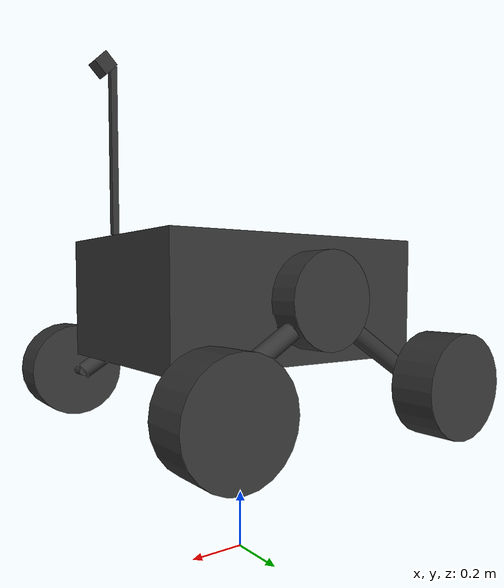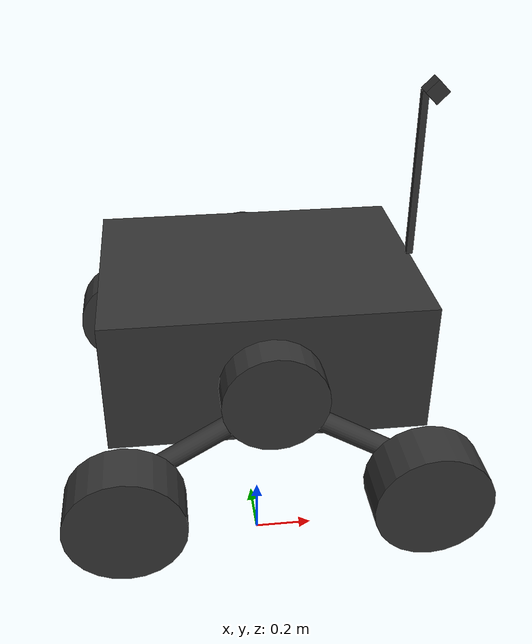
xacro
<?xml version="1.0"?>
<!--
     The model for the 2018 rover
-->
<robot name="rover_2018" xmlns:xacro="http://www.ros.org/wiki/xacro">

    <!-- CALCULATIONS
         This section holds all the math to calculate the offset (both linear
         and angular) for various components.
    -->
    <xacro:include filename="$(find sb_gazebo)/robots/macros.xacro"/>
    <xacro:include filename="$(find sb_gazebo)/robots/materials.xacro"/>
    <xacro:include filename="$(find sb_gazebo)/robots/rover_2018.gazebo"/>

    <xacro:property name="chassis_x_size" value="0.7"/>
    <xacro:property name="chassis_y_size" value="0.94"/>
    <xacro:property name="chassis_z_size" value="0.4"/>
    <xacro:property name="chassis_mass" value="10"/>
    <xacro:property name="chassis_elevation" value="0.5"/>
    <xacro:property name="chassis_x_pos" value="0"/>
    <xacro:property name="chassis_y_pos" value="0"/>
    <xacro:property name="chassis_z_pos" value="${chassis_z_size + chassis_elevation}"/>

    <xacro:property name="primary_rocker_radius" value="0.15"/>
    <xacro:property name="primary_rocker_length" value="0.1"/>
    <!-- The size of the gap between the chassis and the primary rocker -->
    <xacro:property name="primary_rocker_chassis_clearance" value="0.02"/>
    <!-- Primary rocker offset from it's parent joint (the chassis) -->
    <xacro:property name="primary_rocker_x_offset" value="0"/>
    <xacro:property name="primary_rocker_y_offset" value="${chassis_x_size/2 + primary_rocker_length/2 + primary_rocker_chassis_clearance}"/>
    <xacro:property name="primary_rocker_z_offset" value="0"/>

    <xacro:property name="primary_rocker_arm_length" value="0.4"/>
    <xacro:property name="primary_rocker_arm_radius" value="0.03"/>
    <xacro:property name="primary_rocker_arm_pitch" value="${pi*2.7/4}"/>
    <xacro:property name="primary_rocker_arm_x_offset"
        value="${primary_rocker_radius - cos(primary_rocker_arm_pitch)*primary_rocker_arm_length/2}"
        />
    <xacro:property name="primary_rocker_arm_y_offset" value="0"/>
    <xacro:property name="primary_rocker_arm_z_offset"
        value="${- sin(primary_rocker_arm_pitch)*primary_rocker_arm_length/2}"/>

    <xacro:property name="primary_wheel_axle_length" value="0.1"/>
    <xacro:property name="primary_wheel_axle_radius" value="0.015"/>
    <xacro:property name="primary_wheel_axle_x_offset"
        value="${sin(primary_rocker_arm_pitch)*primary_rocker_arm_length/2}"/>
    <xacro:property name="primary_wheel_axle_y_offset" value="${primary_wheel_axle_length/2}"/>
    <xacro:property name="primary_wheel_axle_z_offset"
        value="${cos(primary_rocker_arm_pitch)*primary_rocker_arm_length/2}"/>

    <xacro:property name="primary_wheel_length" value="0.15"/>
    <xacro:property name="primary_wheel_radius" value="0.17"/>
    <xacro:property name="primary_wheel_x_offset" value="0"/>
    <xacro:property name="primary_wheel_y_offset" value="${primary_wheel_length/2}"/>
    <xacro:property name="primary_wheel_z_offset" value="0"/>

    <xacro:property name="tower_upright_x_offset" value="${chassis_y_size/2}"/>
    <xacro:property name="tower_upright_height" value="0.5"/>
    <xacro:property name="tower_upright_x_size" value="0.02"/>
    <xacro:property name="tower_upright_y_size" value="0.02"/>
    <xacro:property name="tower_upright_z_offset" value="${tower_upright_height/2 + chassis_z_size/2}"/>

    <xacro:property name="camera_size" value="0.05"/>
    <xacro:property name="camera_pitch" value="${pi/4}"/>
    <xacro:property name="camera_x_offset" value="0.03"/>
    <xacro:property name="camera_z_offset" value="${tower_upright_height/2}"/>

    <!-- JOINTS AND LINKS
         This section uses all the values calculated above to actually create
         all the links and joints of the robot
    -->

    <!-- Footprint of the robot (because gazebo's base_link can't have interia) -->
    <link name='base_link'/>
    <joint name="base_joint" type="fixed">
        <parent link="base_link"/>
        <child link="chassis"/>
        <origin xyz="
            ${chassis_x_pos}
            ${chassis_y_pos}
            ${chassis_z_pos}
            "
            rpy="0 0 0"
            />
    </joint>
    <box_link
        name="chassis"
        x_pos="0"
        y_pos="0"
        z_pos="0"
        x_size="${chassis_x_size}"
        y_size="${chassis_y_size}"
        z_size="${chassis_z_size}"
        roll="0"
        pitch="0"
        yaw="0"
        mass="10"
        material_name="grey"
        />

    <xacro:macro name="primary_rocker" params="left_right_prefix y_reflect">
        <!-- TODO: Make this revolute model with a spring to resist rotation (but allow it) instead of just being fixed like it currently is -->
        <joint name="${left_right_prefix}_primary_rocker_to_chassis" type="revolute">
            <parent link="chassis"/>
            <child link="${left_right_prefix}_primary_rocker"/>
            <origin xyz="
                ${primary_rocker_x_offset}
                ${primary_rocker_y_offset*y_reflect}
                ${primary_rocker_z_offset}
                "
                rpy="
                0
                0
                0
                "
                />
            <axis xyz="0 1 0" rpy="0 0 0" />
            <limit effort="100" velocity="100"/>
            <joint_properties damping="0.0" friction="0.0"/>
            <limit lower="-20" upper="20" effort="100" velocity="100"/>
        </joint>
        <cylinder_link
            name="${left_right_prefix}_primary_rocker"
            x_pos="0"
            y_pos="0"
            z_pos="0"
            radius="${primary_rocker_radius}"
            length="${primary_rocker_length}"
            roll="${pi/2}"
            pitch="${pi/2}"
            yaw="0"
            mass="1"
            material_name="grey"
            />
    </xacro:macro>
    <primary_rocker left_right_prefix="left" y_reflect="1"/>
    <primary_rocker left_right_prefix="right" y_reflect="-1"/>

    <xacro:macro name="primary_rocker_arm" params="left_right_prefix front_back_prefix x_reflect y_reflect">
        <joint name="${left_right_prefix}_${front_back_prefix}_primary_rocker_to_primary_rocker_arm" type="fixed">
            <parent link="${left_right_prefix}_primary_rocker"/>
            <child link="${left_right_prefix}_${front_back_prefix}_primary_rocker_arm"/>
            <origin xyz="
                ${primary_rocker_arm_x_offset*x_reflect}
                ${primary_rocker_arm_y_offset*y_reflect}
                ${primary_rocker_arm_z_offset}
                "
                rpy="0 0 0"
            />
        </joint>
        <cylinder_link
            name="${left_right_prefix}_${front_back_prefix}_primary_rocker_arm"
            x_pos="0"
            y_pos="0"
            z_pos="0"
            radius="${primary_rocker_arm_radius}"
            length="${primary_rocker_arm_length}"
            roll="0"
            pitch="${primary_rocker_arm_pitch*x_reflect}"
            yaw="0"
            mass="1"
            material_name="grey"
            />
    </xacro:macro>
    <primary_rocker_arm left_right_prefix="left" front_back_prefix="FRONT" x_reflect="1" y_reflect="1"/>
    <primary_rocker_arm left_right_prefix="right" front_back_prefix="FRONT" x_reflect="1" y_reflect="-1"/>
    <primary_rocker_arm left_right_prefix="left" front_back_prefix="BACK" x_reflect="-1" y_reflect="1"/>
    <primary_rocker_arm left_right_prefix="right" front_back_prefix="BACK" x_reflect="-1" y_reflect="-1"/>

    <xacro:macro name="primary_wheel_axle" params="left_right_prefix front_back_prefix x_reflect y_reflect">
        <joint name="${left_right_prefix}_${front_back_prefix}_primary_rocker_arm_to_primary_wheel_axle" type="fixed">
            <parent link="${left_right_prefix}_${front_back_prefix}_primary_rocker_arm"/>
            <child link="${left_right_prefix}_${front_back_prefix}_primary_wheel_axle"/>
            <origin xyz="
                ${primary_wheel_axle_x_offset*x_reflect}
                ${primary_wheel_axle_y_offset*y_reflect}
                ${primary_wheel_axle_z_offset}
                "
                rpy="0 0 0"
            />
        </joint>
        <cylinder_link
            name="${left_right_prefix}_${front_back_prefix}_primary_wheel_axle"
            x_pos="0"
            y_pos="0"
            z_pos="0"
            radius="${primary_wheel_axle_radius}"
            length="${primary_wheel_axle_length}"
            roll="${pi/2}"
            pitch="${pi/2}"
            yaw="0"
            mass="0.05"
            material_name="grey"
            />
    </xacro:macro>
    <primary_wheel_axle left_right_prefix="left" front_back_prefix="FRONT" x_reflect="1" y_reflect="1"/>
    <primary_wheel_axle left_right_prefix="right" front_back_prefix="FRONT" x_reflect="1" y_reflect="-1"/>
    <primary_wheel_axle left_right_prefix="left" front_back_prefix="BACK" x_reflect="-1" y_reflect="1"/>
    <primary_wheel_axle left_right_prefix="right" front_back_prefix="BACK" x_reflect="-1" y_reflect="-1"/>

    <xacro:macro name="primary_wheel" params="left_right_prefix front_back_prefix x_reflect y_reflect">
        <joint name="${left_right_prefix}_${front_back_prefix}_primary_wheel_axle_to_primary_wheel" type="continuous">
            <parent link="${left_right_prefix}_${front_back_prefix}_primary_wheel_axle"/>
            <child link="${left_right_prefix}_${front_back_prefix}_primary_wheel"/>
            <origin xyz="
                ${primary_wheel_x_offset*x_reflect}
                ${primary_wheel_y_offset*y_reflect}
                ${primary_wheel_z_offset}
                "
                rpy="0 0 0"
                />
            <axis xyz="0 1 0" rpy="0 0 0" />
            <limit effort="100" velocity="100"/>
            <joint_properties damping="0.0" friction="0.0"/>
            <hardwareInterface>EffortJointInterface</hardwareInterface>
        </joint>
        <cylinder_link
            name="${left_right_prefix}_${front_back_prefix}_primary_wheel"
            x_pos="0"
            y_pos="0"
            z_pos="0"
            radius="${primary_wheel_radius}"
            length="${primary_wheel_length}"
            roll="${pi/2}"
            pitch="${pi/2}"
            yaw="0"
            mass="1"
            material_name="grey"
            />
    </xacro:macro>
    <primary_wheel left_right_prefix="left" front_back_prefix="FRONT" x_reflect="1" y_reflect="1"/>
    <primary_wheel left_right_prefix="right" front_back_prefix="FRONT" x_reflect="1" y_reflect="-1"/>
    <primary_wheel left_right_prefix="left" front_back_prefix="BACK" x_reflect="-1" y_reflect="1"/>
    <primary_wheel left_right_prefix="right" front_back_prefix="BACK" x_reflect="-1" y_reflect="-1"/>

    <joint name="chassis_to_tower" type="fixed">
        <parent link="chassis"/>
        <child link="tower_upright"/>
        <origin xyz="
            ${tower_upright_x_offset}
            0
            ${tower_upright_z_offset}
            "
            rpy="0 0 0"
            />
    </joint>
    <box_link
        name="tower_upright"
        x_pos="0"
        y_pos="0"
        z_pos="0"
        x_size="${tower_upright_x_size}"
        y_size="${tower_upright_y_size}"
        z_size="${tower_upright_height}"
        roll="0"
        pitch="0"
        yaw="0"
        mass="10"
        material_name="grey"
        />

    <joint name="tower_upright_to_camera" type="fixed">
        <parent link="tower_upright"/>
        <child link="camera"/>
        <origin xyz="
            ${camera_x_offset}
            0
            ${camera_z_offset}
            "
            rpy="0 ${camera_pitch} 0"
            />
    </joint>
    <box_link
        name="camera"
        x_pos="0"
        y_pos="0"
        z_pos="0"
        x_size="${camera_size}"
        y_size="${camera_size}"
        z_size="${camera_size}"
        roll="0"
        pitch="0"
        yaw="0"
        mass="10"
        material_name="grey"
        />

    <gazebo>
      <plugin name="skid_steer_drive_controller" filename="libgazebo_ros_skid_steer_drive.so">
        <updateRate>100.0</updateRate>
        <robotNamespace>/</robotNamespace>
        <leftFrontJoint>left_FRONT_primary_wheel_axle_to_primary_wheel</leftFrontJoint>
        <rightFrontJoint>right_FRONT_primary_wheel_axle_to_primary_wheel</rightFrontJoint>
        <leftRearJoint>left_BACK_primary_wheel_axle_to_primary_wheel</leftRearJoint>
        <rightRearJoint>right_BACK_primary_wheel_axle_to_primary_wheel</rightRearJoint>
        <wheelSeparation>0.4</wheelSeparation>
        <wheelDiameter>0.215</wheelDiameter>
        <robotBaseFrame>base_link</robotBaseFrame>
        <torque>20</torque>
        <commandTopic>cmd_vel</commandTopic>
        <broadcastTF>false</broadcastTF>
      </plugin>
    </gazebo>
</robot>

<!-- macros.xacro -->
<!--
    A Useful set of macros, mostly for generating model parts
-->
<robot name="robot" xmlns:xacro="http://www.ros.org/wiki/xacro">

<!-- Calculate the intertia settings for a cylinder with given mass, radius, height -->
<xacro:macro name="cylinder_inertia" params="m r h">
  <inertia  ixx="${m*(3*r*r+h*h)/12}" ixy = "0" ixz = "0"
    iyy="${m*(3*r*r+h*h)/12}" iyz = "0"
    izz="${m*r*r/2}"
  />
</xacro:macro>

<!-- Calculate the intertia settings for a box with given mass, x size, y size, z size -->
<xacro:macro name="box_inertia" params="m x y z">
  <inertia  ixx="${m*(y*y+z*z)/12}" ixy = "0" ixz = "0"
    iyy="${m*(x*x+z*z)/12}" iyz = "0"
    izz="${m*(x*x+z*z)/12}"
  />
</xacro:macro>

<!-- Calculate the intertia settings for a sphere with given mass, radius -->
<xacro:macro name="sphere_inertia" params="m r">
  <inertia  ixx="${2*m*r*r/5}" ixy = "0" ixz = "0"
    iyy="${2*m*r*r/5}" iyz = "0"
    izz="${2*m*r*r/5}"
  />
</xacro:macro>

<!--
     Creates a box link
-->
<xacro:macro name="box_link"
    params="name x_pos y_pos z_pos x_size y_size z_size roll pitch yaw mass material_name">
    <link name="${name}">
        <collision>
            <origin xyz="${x_pos} ${y_pos} ${z_pos}" rpy="${roll} ${pitch} ${yaw}"/>
            <geometry>
                <box size="${y_size} ${x_size} ${z_size}"/>
            </geometry>
        </collision>
        <visual>
            <origin xyz="${x_pos} ${y_pos} ${z_pos}" rpy="${roll} ${pitch} ${yaw}"/>
            <geometry>
                <box size="${y_size} ${x_size} ${z_size}"/>
            </geometry>
            <material name="${material_name}"/>
        </visual>
        <inertial>
            <origin xyz="${x_pos} ${y_pos} ${z_pos}" rpy="${roll} ${pitch} ${yaw}"/>
            <mass value="${mass}"/>
            <box_inertia m="${mass}" x="${x_size}" y="${y_size}" z="${z_size}"/>
        </inertial>
    </link>
</xacro:macro>

<!--
     Creates a cylinder link
-->
<xacro:macro name="cylinder_link"
    params="name x_pos y_pos z_pos radius length roll pitch yaw mass material_name">
    <link name="${name}">
        <collision>
            <origin xyz="${x_pos} ${y_pos} ${z_pos}" rpy="${roll} ${pitch} ${yaw}"/>
            <geometry>
                <cylinder radius="${radius}" length="${length}"/>
            </geometry>
        </collision>
        <visual>
            <origin xyz="${x_pos} ${y_pos} ${z_pos}" rpy="${roll} ${pitch} ${yaw}"/>
            <geometry>
                <cylinder radius="${radius}" length="${length}"/>
            </geometry>
            <material name="${material_name}"/>
        </visual>
        <inertial>
            <origin xyz="${x_pos} ${y_pos} ${z_pos}" rpy="${roll} ${pitch} ${yaw}"/>
            <mass value="${mass}"/>
            <cylinder_inertia m="${mass}" r="${radius}" h="${length}"/>
        </inertial>
    </link>
</xacro:macro>

<!-- Macro to generate wheels -->
<xacro:macro name="wheel" params="lr tY wheel_displacement fb">

<link name="${lr}_${fb}_wheel">
  <collision>
    <origin xyz="0 0 0" rpy="0 ${pi/2} ${pi/2}" />
    <geometry>
      <cylinder length="${wheel_width}" radius="${wheel_radius}"/>
    </geometry>
  </collision>

  <visual>
    <origin xyz="0 0 0" rpy="0 ${pi/2} ${pi/2}" />
    <geometry>
      <cylinder length="${wheel_width}" radius="${wheel_radius}"/>
    </geometry>
    <material name="black"/>
  </visual>

  <inertial>
    <origin xyz="0 0 0" rpy="0 ${pi/2} ${pi/2}" />
    <mass value="${wheel_mass}"/>
    <cylinder_inertia m="${wheel_mass}" r="${wheel_radius}" h="${wheel_width}"/>
  </inertial>
</link>

<gazebo reference="${lr}_${fb}_wheel">
  <mu1 value="10.0"/>
  <mu2 value="1.0"/>
  <kp  value="10000000.0" />
  <kd  value="1.0" />
  <fdir1 value="1 0 0"/>
  <material>Gazebo/Black</material>
</gazebo>

<joint name="${lr}_${fb}_wheel_hinge" type="continuous">
  <parent link="chassis"/>
  <child link="${lr}_${fb}_wheel"/>
  <origin xyz="${wheel_displacement} ${tY*wheel_width/2+tY*chassis_width/2} ${wheel_radius}" rpy="0 0 0" />
  <axis xyz="0 1 0" rpy="0 0 0" />
  <limit effort="100" velocity="100"/>
  <joint_properties damping="0.0" friction="0.0"/>
  <hardwareInterface>EffortJointInterface</hardwareInterface>
</joint>

<transmission name="${lr}_${fb}_trans">
  <type>transmission_interface/SimpleTransmission</type>
  <joint name="${lr}_${fb}_wheel_hinge">
    <hardwareInterface>EffortJointInterface</hardwareInterface>
  </joint>
  <actuator name="${lr}_${fb}_Motor">
    <hardwareInterface>EffortJointInterface</hardwareInterface>
    <mechanicalReduction>10</mechanicalReduction>
  </actuator>
</transmission>
</xacro:macro>

<!-- Macro to generate caster wheels -->
<xacro:macro name="caster_wheel" params="lr tY wheel_displacement fb caster_radius:=${wheel_radius}">

<link name="${lr}_${fb}_caster_wheel">
  <collision>
    <origin xyz="0 0 0" rpy="0 ${pi/2} ${pi/2}" />
    <geometry>
      <sphere radius="${caster_radius}"/>
    </geometry>
    <surface>
      <friction>
        <ode>
          <mu>0</mu>
          <mu2>0</mu2>
          <slip1>1</slip1>
          <slip2>1</slip2>
        </ode>
      </friction>
    </surface>
  </collision>

  <visual>
    <origin xyz="0 0 0" rpy="0 ${pi/2} ${pi/2}" />
    <geometry>
      <sphere radius="${caster_radius}"/>
    </geometry>
    <material name="black"/>
  </visual>

  <inertial>
    <origin xyz="0 0 0" rpy="0 ${pi/2} ${pi/2}" />
    <mass value="0"/>
    <sphere_inertia m="0" r="0"/>
  </inertial>
</link>

<gazebo reference="${lr}_${fb}_caster_wheel">
  <mu1 value="0.0"/>
  <mu2 value="0.0"/>
  <material>Gazebo/Black</material>
</gazebo>

<joint name="${lr}_${fb}_wheel_hinge" type="fixed">
  <parent link="chassis"/>
  <child link="${lr}_${fb}_caster_wheel"/>
  <origin xyz="${wheel_displacement} ${-tY*caster_radius+tY*chassis_width/2} ${caster_radius}" rpy="0 0 0" />
</joint>

</xacro:macro>

<!-- Macro to generate vertical tower uprights -->
<xacro:macro name="tower_vert" params="lr tX:=-1 tY">

<joint name="${lr}_tower_joint" type="fixed">
  <parent link="chassis"/>
  <child link="tower_${lr}"/>
  <origin xyz="${tX * ((chassis_length/2) - (tower_thickness/2))} ${tY * ((chassis_width/2) - (tower_thickness/2))} ${chassis_height + chassis_elevation + (tower_height/2)}" rpy="0 0 0"/>
</joint>

<link name='tower_${lr}'>

<collision>
    <origin xyz="0 0 0" rpy="0 0 0"/>
    <geometry>
        <box size="${tower_thickness} ${tower_thickness} ${tower_height}"/>
    </geometry>
</collision>

<visual>
    <origin xyz="0 0 0" rpy="0 0 0"/>
    <geometry>
        <box size="${tower_thickness} ${tower_thickness} ${tower_height}"/>
    </geometry>
    <material name="orange"/>
</visual>

<inertial>
    <origin xyz="0 0 0" rpy="0 0 0"/>
    <mass value="${tower_mass}"/>
    <box_inertia m="${tower_mass}" x="${tower_thickness}" y="${tower_thickness}" z="${tower_height}"/>
</inertial>

</link>
</xacro:macro>

</robot>

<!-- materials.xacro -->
<!--
     The Materials for all Robots
 -->
<robot name="elsa" xmlns:xacro="http://www.ros.org/wiki/xacro">

<material name="black">
  <color rgba="0.0 0.0 0.0 1.0"/>
</material>

<material name="blue">
  <color rgba="0.0 0.0 0.8 1.0"/>
</material>

<material name="green">
  <color rgba="0.0 0.8 0.0 1.0"/>
</material>

<material name="grey">
  <color rgba="0.2 0.2 0.2 1.0"/>
</material>

<material name="orange">
  <color rgba="${255/255} ${108/255} ${10/255} 1.0"/>
</material>

<material name="brown">
  <color rgba="${222/255} ${207/255} ${195/255} 1.0"/>
</material>

<material name="red">
  <color rgba="0.8 0.0 0.0 1.0"/>
</material>

<material name="white">
  <color rgba="1.0 1.0 1.0 1.0"/>
</material>

</robot>
